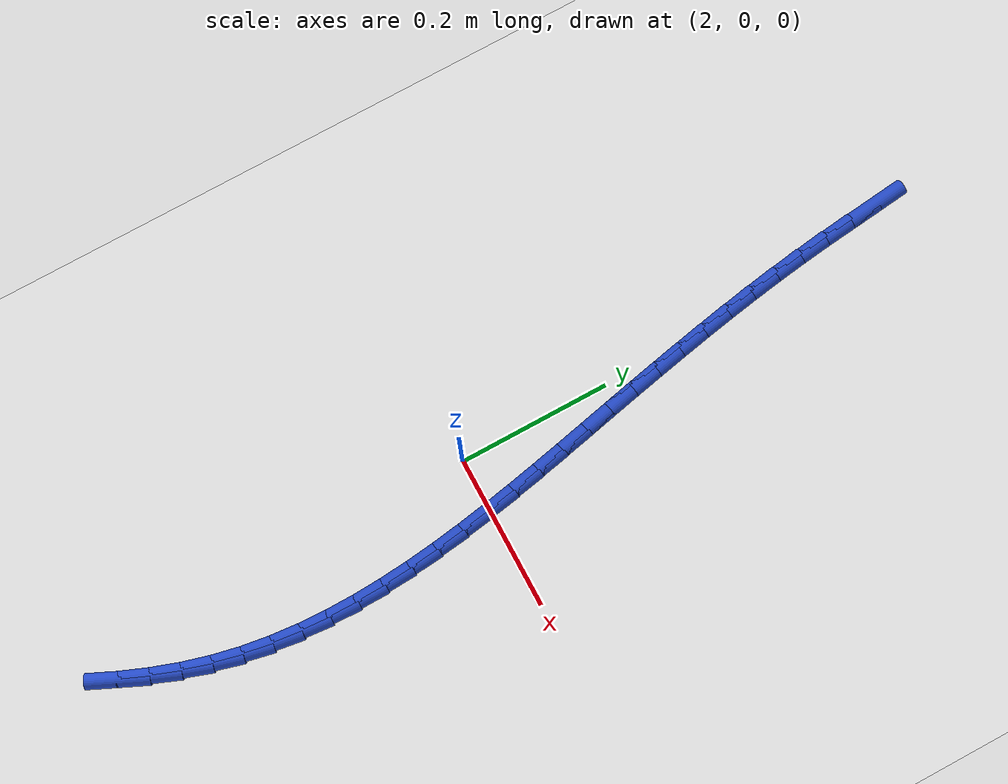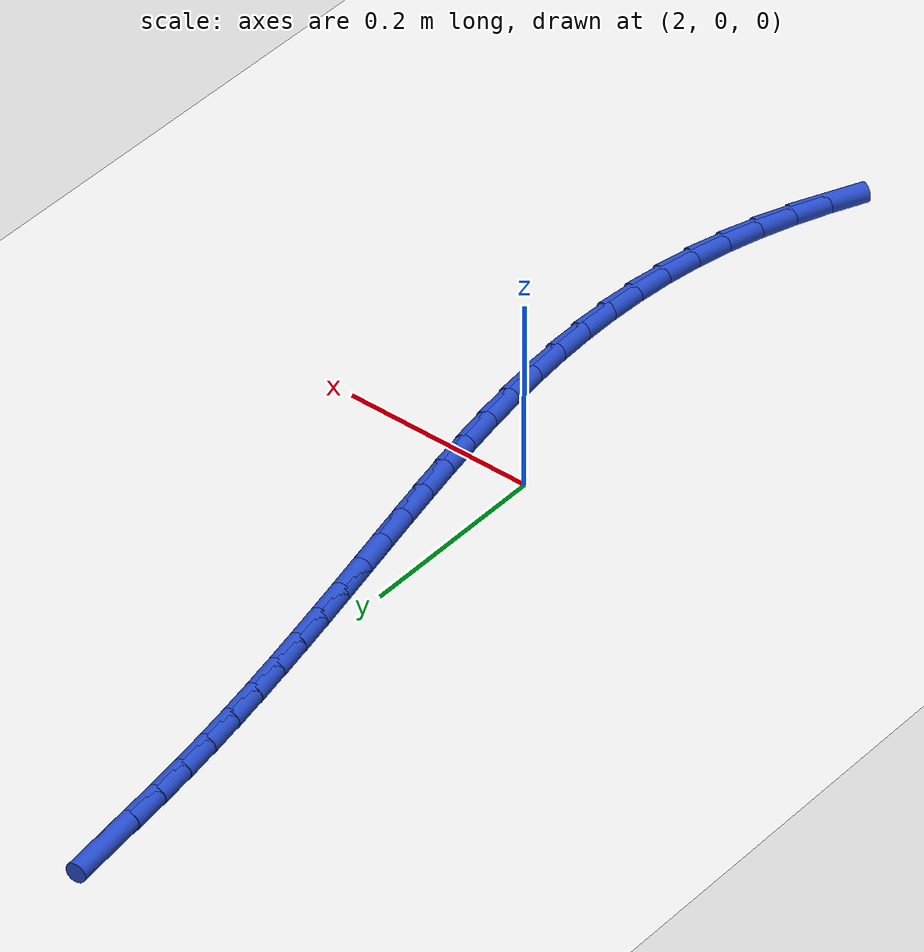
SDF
<sdf version="1.6">
 <world name="default">
  <model name="ground_plane">
   <static>1</static>
   <link name="link">
    <collision name="collision">
     <geometry><plane><normal>0 0 1</normal><size>100 100</size></plane></geometry>
     <surface><friction><ode><mu>100</mu><mu2>50</mu2></ode></friction></surface>
    </collision>
    <visual name="visual">
     <cast_shadows>0</cast_shadows>
     <geometry><plane><normal>0 0 1</normal><size>100 100</size></plane></geometry>
     <material>
      <script><uri>file://media/materials/scripts/gazebo.material</uri><name>Gazebo/WhiteGlow</name></script>
     </material>
    </visual>
   </link>
  </model>
  <model name="line">
   <link name="link_75">
    <pose>1.9617063161896533 0.6050182976887155 0.01 0 1.57 -1.4610021049767237</pose>
    <collision name="collision">
     <geometry><cylinder><radius>0.01</radius><length>0.08</length></cylinder></geometry>
    </collision>
    <visual name="visual">
     <material>
      <script><name>Gazebo/Blue</name><uri>file://media/materials/scripts/gazebo.material</uri></script>
     </material>
     <geometry><cylinder><radius>0.01</radius><length>0.08</length></cylinder></geometry>
    </visual>
   </link>
   <link name="link_76">
    <pose>1.965971055441732 0.5663314836166985 0.01 0 1.57 -1.4624436191215349</pose>
    <collision name="collision">
     <geometry><cylinder><radius>0.01</radius><length>0.08</length></cylinder></geometry>
    </collision>
    <visual name="visual">
     <material>
      <script><name>Gazebo/Blue</name><uri>file://media/materials/scripts/gazebo.material</uri></script>
     </material>
     <geometry><cylinder><radius>0.01</radius><length>0.08</length></cylinder></geometry>
    </visual>
   </link>
   <link name="link_77">
    <pose>1.9701746314856892 0.5276881232768644 0.01 0 1.57 -1.4469496289792643</pose>
    <collision name="collision">
     <geometry><cylinder><radius>0.01</radius><length>0.08</length></cylinder></geometry>
    </collision>
    <visual name="visual">
     <material>
      <script><name>Gazebo/Blue</name><uri>file://media/materials/scripts/gazebo.material</uri></script>
     </material>
     <geometry><cylinder><radius>0.01</radius><length>0.08</length></cylinder></geometry>
    </visual>
   </link>
   <link name="link_78">
    <pose>1.9749426874496498 0.4893854991753003 0.01 0 1.57 -1.4297063557068674</pose>
    <collision name="collision">
     <geometry><cylinder><radius>0.01</radius><length>0.08</length></cylinder></geometry>
    </collision>
    <visual name="visual">
     <material>
      <script><name>Gazebo/Blue</name><uri>file://media/materials/scripts/gazebo.material</uri></script>
     </material>
     <geometry><cylinder><radius>0.01</radius><length>0.08</length></cylinder></geometry>
    </visual>
   </link>
   <link name="link_79">
    <pose>1.9803351634622235 0.45141932172935556 0.01 0 1.57 -1.4141518859821052</pose>
    <collision name="collision">
     <geometry><cylinder><radius>0.01</radius><length>0.08</length></cylinder></geometry>
    </collision>
    <visual name="visual">
     <material>
      <script><name>Gazebo/Blue</name><uri>file://media/materials/scripts/gazebo.material</uri></script>
     </material>
     <geometry><cylinder><radius>0.01</radius><length>0.08</length></cylinder></geometry>
    </visual>
   </link>
   <link name="link_80">
    <pose>1.9862893459251423 0.4137199155609395 0.01 0 1.57 -1.400391045977205</pose>
    <collision name="collision">
     <geometry><cylinder><radius>0.01</radius><length>0.08</length></cylinder></geometry>
    </collision>
    <visual name="visual">
     <material>
      <script><name>Gazebo/Blue</name><uri>file://media/materials/scripts/gazebo.material</uri></script>
     </material>
     <geometry><cylinder><radius>0.01</radius><length>0.08</length></cylinder></geometry>
    </visual>
   </link>
   <link name="link_81">
    <pose>1.9927425212401368 0.37621760529196285 0.01 0 1.57 -1.3885088139259074</pose>
    <collision name="collision">
     <geometry><cylinder><radius>0.01</radius><length>0.08</length></cylinder></geometry>
    </collision>
    <visual name="visual">
     <material>
      <script><name>Gazebo/Blue</name><uri>file://media/materials/scripts/gazebo.material</uri></script>
     </material>
     <geometry><cylinder><radius>0.01</radius><length>0.08</length></cylinder></geometry>
    </visual>
   </link>
   <link name="link_82">
    <pose>1.9996319758089396 0.3388427155443355 0.01 0 1.57 -1.3785699237883078</pose>
    <collision name="collision">
     <geometry><cylinder><radius>0.01</radius><length>0.08</length></cylinder></geometry>
    </collision>
    <visual name="visual">
     <material>
      <script><name>Gazebo/Blue</name><uri>file://media/materials/scripts/gazebo.material</uri></script>
     </material>
     <geometry><cylinder><radius>0.01</radius><length>0.08</length></cylinder></geometry>
    </visual>
   </link>
   <link name="link_83">
    <pose>2.0068949960332816 0.3015255709399668 0.01 0 1.57 -1.370618935664239</pose>
    <collision name="collision">
     <geometry><cylinder><radius>0.01</radius><length>0.08</length></cylinder></geometry>
    </collision>
    <visual name="visual">
     <material>
      <script><name>Gazebo/Blue</name><uri>file://media/materials/scripts/gazebo.material</uri></script>
     </material>
     <geometry><cylinder><radius>0.01</radius><length>0.08</length></cylinder></geometry>
    </visual>
   </link>
   <link name="link_84">
    <pose>2.0144688683148946 0.2641964961007674 0.01 0 1.57 -1.3646806818856114</pose>
    <collision name="collision">
     <geometry><cylinder><radius>0.01</radius><length>0.08</length></cylinder></geometry>
    </collision>
    <visual name="visual">
     <material>
      <script><name>Gazebo/Blue</name><uri>file://media/materials/scripts/gazebo.material</uri></script>
     </material>
     <geometry><cylinder><radius>0.01</radius><length>0.08</length></cylinder></geometry>
    </visual>
   </link>
   <link name="link_85">
    <pose>2.02229087905551 0.22678581564864675 0.01 0 1.57 -1.3607609977910289</pose>
    <collision name="collision">
     <geometry><cylinder><radius>0.01</radius><length>0.08</length></cylinder></geometry>
    </collision>
    <visual name="visual">
     <material>
      <script><name>Gazebo/Blue</name><uri>file://media/materials/scripts/gazebo.material</uri></script>
     </material>
     <geometry><cylinder><radius>0.01</radius><length>0.08</length></cylinder></geometry>
    </visual>
   </link>
   <link name="link_86">
    <pose>2.0302983146568603 0.18922385420551546 0.01 0 1.57 -1.3588638479744435</pose>
    <collision name="collision">
     <geometry><cylinder><radius>0.01</radius><length>0.08</length></cylinder></geometry>
    </collision>
    <visual name="visual">
     <material>
      <script><name>Gazebo/Blue</name><uri>file://media/materials/scripts/gazebo.material</uri></script>
     </material>
     <geometry><cylinder><radius>0.01</radius><length>0.08</length></cylinder></geometry>
    </visual>
   </link>
   <link name="link_87">
    <pose>2.0384276413668503 0.15144177306357073 0.01 0 1.57 -1.35982373584555</pose>
    <collision name="collision">
     <geometry><cylinder><radius>0.01</radius><length>0.08</length></cylinder></geometry>
    </collision>
    <visual name="visual">
     <material>
      <script><name>Gazebo/Blue</name><uri>file://media/materials/scripts/gazebo.material</uri></script>
     </material>
     <geometry><cylinder><radius>0.01</radius><length>0.08</length></cylinder></geometry>
    </visual>
   </link>
   <link name="link_88">
    <pose>2.046571293857328 0.11341565180991643 0.01 0 1.57 -1.36487557884351</pose>
    <collision name="collision">
     <geometry><cylinder><radius>0.01</radius><length>0.08</length></cylinder></geometry>
    </collision>
    <visual name="visual">
     <material>
      <script><name>Gazebo/Blue</name><uri>file://media/materials/scripts/gazebo.material</uri></script>
     </material>
     <geometry><cylinder><radius>0.01</radius><length>0.08</length></cylinder></geometry>
    </visual>
   </link>
   <link name="link_89">
    <pose>2.05455627937079 0.07518831505488328 0.01 0 1.57 -1.374103525408147</pose>
    <collision name="collision">
     <geometry><cylinder><radius>0.01</radius><length>0.08</length></cylinder></geometry>
    </collision>
    <visual name="visual">
     <material>
      <script><name>Gazebo/Blue</name><uri>file://media/materials/scripts/gazebo.material</uri></script>
     </material>
     <geometry><cylinder><radius>0.01</radius><length>0.08</length></cylinder></geometry>
    </visual>
   </link>
   <link name="link_90">
    <pose>2.0622042943077754 0.03680800520181235 0.01 0 1.57 -1.3875377576266903</pose>
    <collision name="collision">
     <geometry><cylinder><radius>0.01</radius><length>0.08</length></cylinder></geometry>
    </collision>
    <visual name="visual">
     <material>
      <script><name>Gazebo/Blue</name><uri>file://media/materials/scripts/gazebo.material</uri></script>
     </material>
     <geometry><cylinder><radius>0.01</radius><length>0.08</length></cylinder></geometry>
    </visual>
   </link>
   <link name="link_91">
    <pose>2.0693370350688283 -0.0016770353459547851 0.01 0 1.57 -1.4052544913835636</pose>
    <collision name="collision">
     <geometry><cylinder><radius>0.01</radius><length>0.08</length></cylinder></geometry>
    </collision>
    <visual name="visual">
     <material>
      <script><name>Gazebo/Blue</name><uri>file://media/materials/scripts/gazebo.material</uri></script>
     </material>
     <geometry><cylinder><radius>0.01</radius><length>0.08</length></cylinder></geometry>
    </visual>
   </link>
   <link name="link_92">
    <pose>2.0757761980544895 -0.04021856418507734 0.01 0 1.57 -1.4273699613599242</pose>
    <collision name="collision">
     <geometry><cylinder><radius>0.01</radius><length>0.08</length></cylinder></geometry>
    </collision>
    <visual name="visual">
     <material>
      <script><name>Gazebo/Blue</name><uri>file://media/materials/scripts/gazebo.material</uri></script>
     </material>
     <geometry><cylinder><radius>0.01</radius><length>0.08</length></cylinder></geometry>
    </visual>
   </link>
   <link name="link_93">
    <pose>2.0813434796653 -0.07876833891221233 0.01 0 1.57 -1.4540324872274775</pose>
    <collision name="collision">
     <geometry><cylinder><radius>0.01</radius><length>0.08</length></cylinder></geometry>
    </collision>
    <visual name="visual">
     <material>
      <script><name>Gazebo/Blue</name><uri>file://media/materials/scripts/gazebo.material</uri></script>
     </material>
     <geometry><cylinder><radius>0.01</radius><length>0.08</length></cylinder></geometry>
    </visual>
   </link>
   <link name="link_94">
    <pose>2.085860576301803 -0.11727811712401898 0.01 0 1.57 -1.4854116098977035</pose>
    <collision name="collision">
     <geometry><cylinder><radius>0.01</radius><length>0.08</length></cylinder></geometry>
    </collision>
    <visual name="visual">
     <material>
      <script><name>Gazebo/Blue</name><uri>file://media/materials/scripts/gazebo.material</uri></script>
     </material>
     <geometry><cylinder><radius>0.01</radius><length>0.08</length></cylinder></geometry>
    </visual>
   </link>
   <link name="link_95">
    <pose>2.089149184364539 -0.15569965641715564 0.01 0 1.57 -1.5216831035784686</pose>
    <collision name="collision">
     <geometry><cylinder><radius>0.01</radius><length>0.08</length></cylinder></geometry>
    </collision>
    <visual name="visual">
     <material>
      <script><name>Gazebo/Blue</name><uri>file://media/materials/scripts/gazebo.material</uri></script>
     </material>
     <geometry><cylinder><radius>0.01</radius><length>0.08</length></cylinder></geometry>
    </visual>
   </link>
   <link name="link_96">
    <pose>2.09103100025405 -0.1939847143882809 0.01 0 1.57 -1.5630086229820446</pose>
    <collision name="collision">
     <geometry><cylinder><radius>0.01</radius><length>0.08</length></cylinder></geometry>
    </collision>
    <visual name="visual">
     <material>
      <script><name>Gazebo/Blue</name><uri>file://media/materials/scripts/gazebo.material</uri></script>
     </material>
     <geometry><cylinder><radius>0.01</radius><length>0.08</length></cylinder></geometry>
    </visual>
   </link>
   <link name="link_97">
    <pose>2.0913277203708778 -0.23208504863405321 0.01 0 1.57 1.5320836682283179</pose>
    <collision name="collision">
     <geometry><cylinder><radius>0.01</radius><length>0.08</length></cylinder></geometry>
    </collision>
    <visual name="visual">
     <material>
      <script><name>Gazebo/Blue</name><uri>file://media/materials/scripts/gazebo.material</uri></script>
     </material>
     <geometry><cylinder><radius>0.01</radius><length>0.08</length></cylinder></geometry>
    </visual>
   </link>
   <link name="link_98">
    <pose>2.0898610411155647 -0.2699524167511319 0.01 0 1.57 1.4803618293123737</pose>
    <collision name="collision">
     <geometry><cylinder><radius>0.01</radius><length>0.08</length></cylinder></geometry>
    </collision>
    <visual name="visual">
     <material>
      <script><name>Gazebo/Blue</name><uri>file://media/materials/scripts/gazebo.material</uri></script>
     </material>
     <geometry><cylinder><radius>0.01</radius><length>0.08</length></cylinder></geometry>
    </visual>
   </link>
   <link name="link_99">
    <pose>2.0864526588886516 -0.30753857633617376 0.01 0 1.57 1.423484846382992</pose>
    <collision name="collision">
     <geometry><cylinder><radius>0.01</radius><length>0.08</length></cylinder></geometry>
    </collision>
    <visual name="visual">
     <material>
      <script><name>Gazebo/Blue</name><uri>file://media/materials/scripts/gazebo.material</uri></script>
     </material>
     <geometry><cylinder><radius>0.01</radius><length>0.08</length></cylinder></geometry>
    </visual>
   </link>
   <link name="link_100">
    <pose>2.0809242700906805 -0.344795284985838 0.01 0 1.57 1.3617723974587643</pose>
    <collision name="collision">
     <geometry><cylinder><radius>0.01</radius><length>0.08</length></cylinder></geometry>
    </collision>
    <visual name="visual">
     <material>
      <script><name>Gazebo/Blue</name><uri>file://media/materials/scripts/gazebo.material</uri></script>
     </material>
     <geometry><cylinder><radius>0.01</radius><length>0.08</length></cylinder></geometry>
    </visual>
   </link>
   <link name="link_101">
    <pose>2.073101367989571 -0.38167450137056996 0.01 0 1.57 1.2996330340256246</pose>
    <collision name="collision">
     <geometry><cylinder><radius>0.01</radius><length>0.08</length></cylinder></geometry>
    </collision>
    <visual name="visual">
     <material>
      <script><name>Gazebo/Blue</name><uri>file://media/materials/scripts/gazebo.material</uri></script>
     </material>
     <geometry><cylinder><radius>0.01</radius><length>0.08</length></cylinder></geometry>
    </visual>
   </link>
   <link name="link_102">
    <pose>2.0629645618026182 -0.4181363987620128 0.01 0 1.57 1.2425895240601776</pose>
    <collision name="collision">
     <geometry><cylinder><radius>0.01</radius><length>0.08</length></cylinder></geometry>
    </collision>
    <visual name="visual">
     <material>
      <script><name>Gazebo/Blue</name><uri>file://media/materials/scripts/gazebo.material</uri></script>
     </material>
     <geometry><cylinder><radius>0.01</radius><length>0.08</length></cylinder></geometry>
    </visual>
   </link>
   <link name="link_103">
    <pose>2.0507004191260667 -0.45415205753680754 0.01 0 1.57 1.1909161917558324</pose>
    <collision name="collision">
     <geometry><cylinder><radius>0.01</radius><length>0.08</length></cylinder></geometry>
    </collision>
    <visual name="visual">
     <material>
      <script><name>Gazebo/Blue</name><uri>file://media/materials/scripts/gazebo.material</uri></script>
     </material>
     <geometry><cylinder><radius>0.01</radius><length>0.08</length></cylinder></geometry>
    </visual>
   </link>
   <link name="link_104">
    <pose>2.036509729795163 -0.48969331125024357 0.01 0 1.57 1.1444107724059973</pose>
    <collision name="collision">
     <geometry><cylinder><radius>0.01</radius><length>0.08</length></cylinder></geometry>
    </collision>
    <visual name="visual">
     <material>
      <script><name>Gazebo/Blue</name><uri>file://media/materials/scripts/gazebo.material</uri></script>
     </material>
     <geometry><cylinder><radius>0.01</radius><length>0.08</length></cylinder></geometry>
    </visual>
   </link>
  </model>
 </world>
</sdf>
